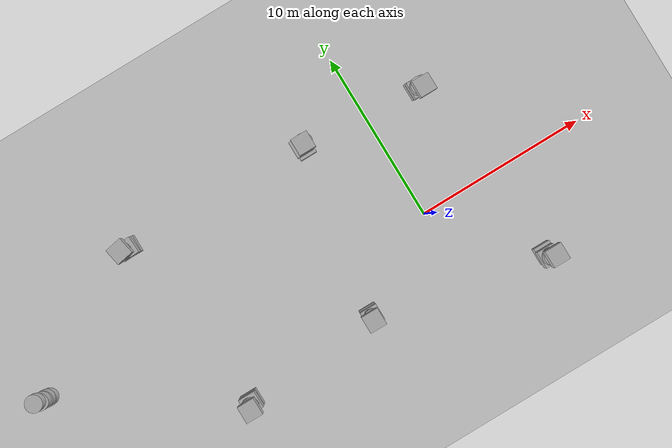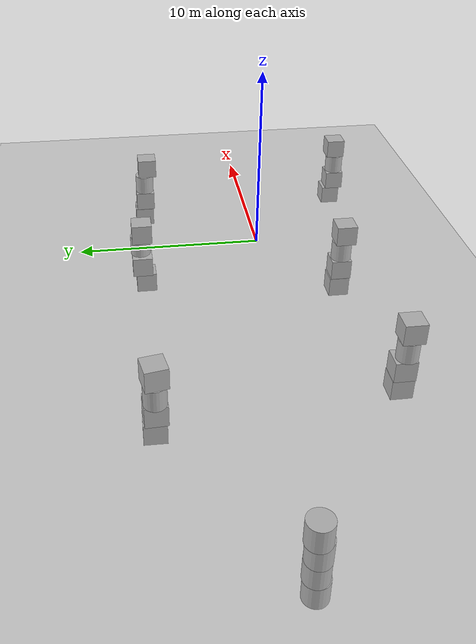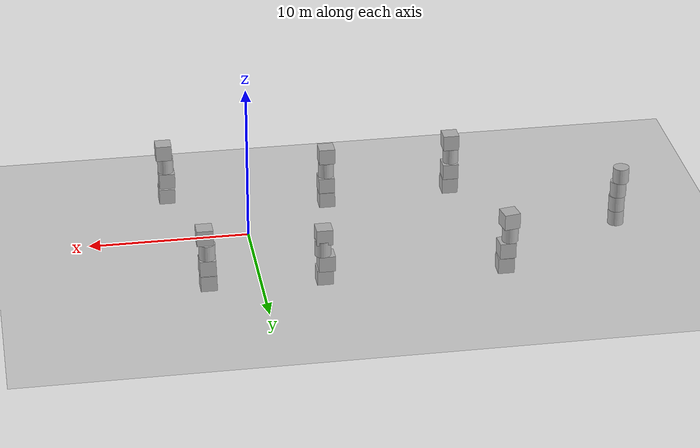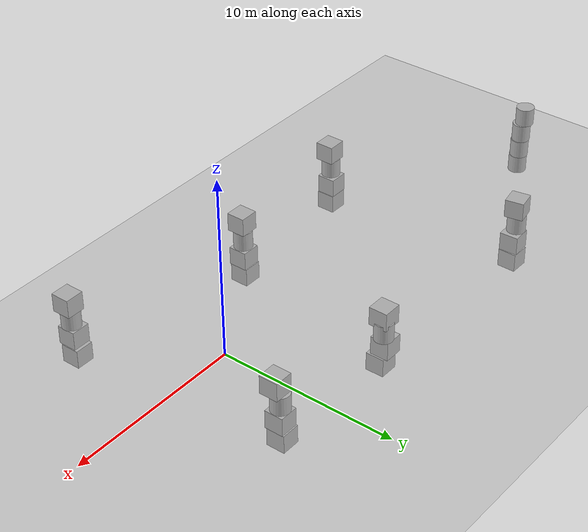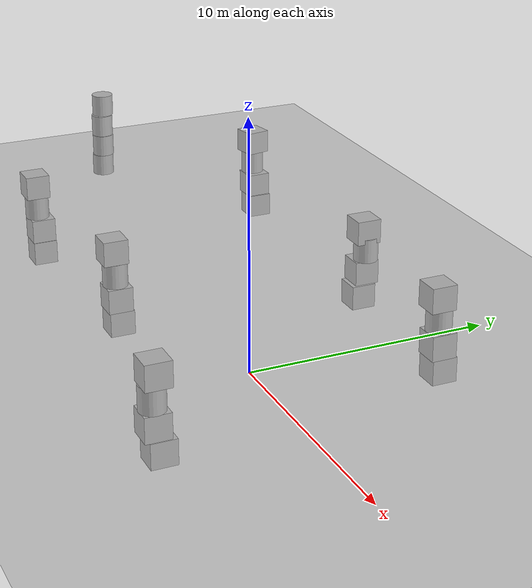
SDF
<sdf version='1.10'>
  <world name='empty'>
    <physics name='1ms' type='ode'>
      <max_step_size>0.001</max_step_size>
      <real_time_factor>1</real_time_factor>
      <real_time_update_rate>1000</real_time_update_rate>
    </physics>
    <plugin name='gz::sim::systems::Physics' filename='gz-sim-physics-system'/>
    <plugin name='gz::sim::systems::UserCommands' filename='gz-sim-user-commands-system'/>
    <plugin name='gz::sim::systems::SceneBroadcaster' filename='gz-sim-scene-broadcaster-system'/>
    <plugin name='gz::sim::systems::Contact' filename='gz-sim-contact-system'/>
    <gravity>0 0 -9.8000000000000007</gravity>
    <magnetic_field>5.5644999999999998e-06 2.2875799999999999e-05 -4.2388400000000002e-05</magnetic_field>
    <atmosphere type='adiabatic'/>
    <scene>
      <ambient>0.400000006 0.400000006 0.400000006 1</ambient>
      <background>0.699999988 0.699999988 0.699999988 1</background>
      <shadows>true</shadows>
    </scene>
    <model name='ground_plane'>
      <static>true</static>
      <link name='link'>
        <collision name='collision'>
          <geometry>
            <plane>
              <normal>0 0 1</normal>
              <size>100 100</size>
            </plane>
          </geometry>
          <surface>
            <friction>
              <ode/>
            </friction>
            <bounce/>
            <contact/>
          </surface>
        </collision>
        <visual name='visual'>
          <geometry>
            <plane>
              <normal>0 0 1</normal>
              <size>100 100</size>
            </plane>
          </geometry>
          <material>
            <ambient>0.800000012 0.800000012 0.800000012 1</ambient>
            <diffuse>0.800000012 0.800000012 0.800000012 1</diffuse>
            <specular>0.800000012 0.800000012 0.800000012 1</specular>
          </material>
        </visual>
        <pose>0 0 0 0 0 0</pose>
        <inertial>
          <pose>0 0 0 0 0 0</pose>
          <mass>1</mass>
          <inertia>
            <ixx>1</ixx>
            <ixy>0</ixy>
            <ixz>0</ixz>
            <iyy>1</iyy>
            <iyz>0</iyz>
            <izz>1</izz>
          </inertia>
        </inertial>
        <enable_wind>false</enable_wind>
      </link>
      <pose>0 0 0 0 0 0</pose>
      <self_collide>false</self_collide>
    </model>
    <model name='box'>
      <pose>3.2290199999999998 6.1986999999999997 0.5 6.2287699999999997e-22 9.3279700000000006e-22 -3.63155e-22</pose>
      <link name='box_link'>
        <inertial>
          <inertia>
            <ixx>0.16666</ixx>
            <ixy>0</ixy>
            <ixz>0</ixz>
            <iyy>0.16666</iyy>
            <iyz>0</iyz>
            <izz>0.16666</izz>
          </inertia>
          <mass>1</mass>
          <pose>0 0 0 0 0 0</pose>
        </inertial>
        <collision name='box_collision'>
          <geometry>
            <box>
              <size>1 1 1</size>
            </box>
          </geometry>
          <surface>
            <friction>
              <ode/>
            </friction>
            <bounce/>
            <contact/>
          </surface>
        </collision>
        <visual name='box_visual'>
          <geometry>
            <box>
              <size>1 1 1</size>
            </box>
          </geometry>
          <material>
            <ambient>0.300000012 0.300000012 0.300000012 1</ambient>
            <diffuse>0.699999988 0.699999988 0.699999988 1</diffuse>
            <specular>1 1 1 1</specular>
          </material>
        </visual>
        <pose>0 0 0 0 0 0</pose>
        <enable_wind>false</enable_wind>
      </link>
      <static>false</static>
      <self_collide>false</self_collide>
    </model>
    <model name='box_0'>
      <pose>-3.8219699999999999 6.5348899999999999 0.5 6.2287699999999997e-22 9.3279700000000006e-22 -3.63155e-22</pose>
      <link name='box_link'>
        <inertial>
          <inertia>
            <ixx>0.16666</ixx>
            <ixy>0</ixy>
            <ixz>0</ixz>
            <iyy>0.16666</iyy>
            <iyz>0</iyz>
            <izz>0.16666</izz>
          </inertia>
          <mass>1</mass>
          <pose>0 0 0 0 0 0</pose>
        </inertial>
        <collision name='box_collision'>
          <geometry>
            <box>
              <size>1 1 1</size>
            </box>
          </geometry>
          <surface>
            <friction>
              <ode/>
            </friction>
            <bounce/>
            <contact/>
          </surface>
        </collision>
        <visual name='box_visual'>
          <geometry>
            <box>
              <size>1 1 1</size>
            </box>
          </geometry>
          <material>
            <ambient>0.300000012 0.300000012 0.300000012 1</ambient>
            <diffuse>0.699999988 0.699999988 0.699999988 1</diffuse>
            <specular>1 1 1 1</specular>
          </material>
        </visual>
        <pose>0 0 0 0 0 0</pose>
        <enable_wind>false</enable_wind>
      </link>
      <static>false</static>
      <self_collide>false</self_collide>
    </model>
    <model name='cylinder'>
      <pose>3.24383 6.1315999999999997 2.4999600000000002 2.9919800000000008e-07 2.08551e-07 3.0839099999999998e-13</pose>
      <link name='cylinder_link'>
        <inertial>
          <inertia>
            <ixx>0.14580000000000001</ixx>
            <ixy>0</ixy>
            <ixz>0</ixz>
            <iyy>0.14580000000000001</iyy>
            <iyz>0</iyz>
            <izz>0.125</izz>
          </inertia>
          <mass>1</mass>
          <pose>0 0 0 0 0 0</pose>
        </inertial>
        <collision name='cylinder_collision'>
          <geometry>
            <cylinder>
              <radius>0.5</radius>
              <length>1</length>
            </cylinder>
          </geometry>
          <surface>
            <friction>
              <ode/>
            </friction>
            <bounce/>
            <contact/>
          </surface>
        </collision>
        <visual name='cylinder_visual'>
          <geometry>
            <cylinder>
              <radius>0.5</radius>
              <length>1</length>
            </cylinder>
          </geometry>
          <material>
            <ambient>0.300000012 0.300000012 0.300000012 1</ambient>
            <diffuse>0.699999988 0.699999988 0.699999988 1</diffuse>
            <specular>1 1 1 1</specular>
          </material>
        </visual>
        <pose>0 0 0 0 0 0</pose>
        <enable_wind>false</enable_wind>
      </link>
      <static>false</static>
      <self_collide>false</self_collide>
    </model>
    <model name='box_1'>
      <pose>3.2554599999999998 6.1295400000000004 1.5 3.5146799999999999e-08 4.0017200000000001e-09 3.2275099999999998e-13</pose>
      <link name='box_link'>
        <inertial>
          <inertia>
            <ixx>0.16666</ixx>
            <ixy>0</ixy>
            <ixz>0</ixz>
            <iyy>0.16666</iyy>
            <iyz>0</iyz>
            <izz>0.16666</izz>
          </inertia>
          <mass>1</mass>
          <pose>0 0 0 0 0 0</pose>
        </inertial>
        <collision name='box_collision'>
          <geometry>
            <box>
              <size>1 1 1</size>
            </box>
          </geometry>
          <surface>
            <friction>
              <ode/>
            </friction>
            <bounce/>
            <contact/>
          </surface>
        </collision>
        <visual name='box_visual'>
          <geometry>
            <box>
              <size>1 1 1</size>
            </box>
          </geometry>
          <material>
            <ambient>0.300000012 0.300000012 0.300000012 1</ambient>
            <diffuse>0.699999988 0.699999988 0.699999988 1</diffuse>
            <specular>1 1 1 1</specular>
          </material>
        </visual>
        <pose>0 0 0 0 0 0</pose>
        <enable_wind>false</enable_wind>
      </link>
      <static>false</static>
      <self_collide>false</self_collide>
    </model>
    <model name='box_2'>
      <pose>3.373173799090794 5.9645092034643934 3.4999998758204205 7.7313615140502642e-08 4.4144220521796931e-08 4.2821820258794955e-11</pose>
      <link name='box_link'>
        <inertial>
          <inertia>
            <ixx>0.16666</ixx>
            <ixy>0</ixy>
            <ixz>0</ixz>
            <iyy>0.16666</iyy>
            <iyz>0</iyz>
            <izz>0.16666</izz>
          </inertia>
          <mass>1</mass>
          <pose>0 0 0 0 0 0</pose>
        </inertial>
        <collision name='box_collision'>
          <geometry>
            <box>
              <size>1 1 1</size>
            </box>
          </geometry>
          <surface>
            <friction>
              <ode/>
            </friction>
            <bounce/>
            <contact/>
          </surface>
        </collision>
        <visual name='box_visual'>
          <geometry>
            <box>
              <size>1 1 1</size>
            </box>
          </geometry>
          <material>
            <ambient>0.300000012 0.300000012 0.300000012 1</ambient>
            <diffuse>0.699999988 0.699999988 0.699999988 1</diffuse>
            <specular>1 1 1 1</specular>
          </material>
        </visual>
        <pose>0 0 0 0 0 0</pose>
        <enable_wind>false</enable_wind>
      </link>
      <static>false</static>
      <self_collide>false</self_collide>
    </model>
    <model name='box_3'>
      <pose>-3.9138700000000002 6.7071399999999999 1.5 -2.2923699999999995e-07 2.8144699999999992e-08 1.4568000000000009e-13</pose>
      <link name='box_link'>
        <inertial>
          <inertia>
            <ixx>0.16666</ixx>
            <ixy>0</ixy>
            <ixz>0</ixz>
            <iyy>0.16666</iyy>
            <iyz>0</iyz>
            <izz>0.16666</izz>
          </inertia>
          <mass>1</mass>
          <pose>0 0 0 0 0 0</pose>
        </inertial>
        <collision name='box_collision'>
          <geometry>
            <box>
              <size>1 1 1</size>
            </box>
          </geometry>
          <surface>
            <friction>
              <ode/>
            </friction>
            <bounce/>
            <contact/>
          </surface>
        </collision>
        <visual name='box_visual'>
          <geometry>
            <box>
              <size>1 1 1</size>
            </box>
          </geometry>
          <material>
            <ambient>0.300000012 0.300000012 0.300000012 1</ambient>
            <diffuse>0.699999988 0.699999988 0.699999988 1</diffuse>
            <specular>1 1 1 1</specular>
          </material>
        </visual>
        <pose>0 0 0 0 0 0</pose>
        <enable_wind>false</enable_wind>
      </link>
      <static>false</static>
      <self_collide>false</self_collide>
    </model>
    <model name='box_4'>
      <pose>-3.7681131608721841 6.6866476125000105 3.3128317818594031 5.8973355975885864e-07 -5.797091750770158e-07 -1.9234866119155961e-07</pose>
      <link name='box_link'>
        <inertial>
          <inertia>
            <ixx>0.16666</ixx>
            <ixy>0</ixy>
            <ixz>0</ixz>
            <iyy>0.16666</iyy>
            <iyz>0</iyz>
            <izz>0.16666</izz>
          </inertia>
          <mass>1</mass>
          <pose>0 0 0 0 0 0</pose>
        </inertial>
        <collision name='box_collision'>
          <geometry>
            <box>
              <size>1 1 1</size>
            </box>
          </geometry>
          <surface>
            <friction>
              <ode/>
            </friction>
            <bounce/>
            <contact/>
          </surface>
        </collision>
        <visual name='box_visual'>
          <geometry>
            <box>
              <size>1 1 1</size>
            </box>
          </geometry>
          <material>
            <ambient>0.300000012 0.300000012 0.300000012 1</ambient>
            <diffuse>0.699999988 0.699999988 0.699999988 1</diffuse>
            <specular>1 1 1 1</specular>
          </material>
        </visual>
        <pose>0 0 0 0 0 0</pose>
        <enable_wind>false</enable_wind>
      </link>
      <static>false</static>
      <self_collide>false</self_collide>
    </model>
    <model name='cylinder_0'>
      <pose>-3.6952600000000002 6.7608600000000001 2.5 -2.8111200000000001e-07 1.7712099999999999e-07 -7.0194799999999997e-11</pose>
      <link name='cylinder_link'>
        <inertial>
          <inertia>
            <ixx>0.14580000000000001</ixx>
            <ixy>0</ixy>
            <ixz>0</ixz>
            <iyy>0.14580000000000001</iyy>
            <iyz>0</iyz>
            <izz>0.125</izz>
          </inertia>
          <mass>1</mass>
          <pose>0 0 0 0 0 0</pose>
        </inertial>
        <collision name='cylinder_collision'>
          <geometry>
            <cylinder>
              <radius>0.5</radius>
              <length>1</length>
            </cylinder>
          </geometry>
          <surface>
            <friction>
              <ode/>
            </friction>
            <bounce/>
            <contact/>
          </surface>
        </collision>
        <visual name='cylinder_visual'>
          <geometry>
            <cylinder>
              <radius>0.5</radius>
              <length>1</length>
            </cylinder>
          </geometry>
          <material>
            <ambient>0.300000012 0.300000012 0.300000012 1</ambient>
            <diffuse>0.699999988 0.699999988 0.699999988 1</diffuse>
            <specular>1 1 1 1</specular>
          </material>
        </visual>
        <pose>0 0 0 0 0 0</pose>
        <enable_wind>false</enable_wind>
      </link>
      <static>false</static>
      <self_collide>false</self_collide>
    </model>
    <model name='box_5'>
      <pose>4.6062399999999997 -5.3226800000000001 0.5 6.2287699999999997e-22 9.3279700000000006e-22 -3.63155e-22</pose>
      <link name='box_link'>
        <inertial>
          <inertia>
            <ixx>0.16666</ixx>
            <ixy>0</ixy>
            <ixz>0</ixz>
            <iyy>0.16666</iyy>
            <iyz>0</iyz>
            <izz>0.16666</izz>
          </inertia>
          <mass>1</mass>
          <pose>0 0 0 0 0 0</pose>
        </inertial>
        <collision name='box_collision'>
          <geometry>
            <box>
              <size>1 1 1</size>
            </box>
          </geometry>
          <surface>
            <friction>
              <ode/>
            </friction>
            <bounce/>
            <contact/>
          </surface>
        </collision>
        <visual name='box_visual'>
          <geometry>
            <box>
              <size>1 1 1</size>
            </box>
          </geometry>
          <material>
            <ambient>0.300000012 0.300000012 0.300000012 1</ambient>
            <diffuse>0.699999988 0.699999988 0.699999988 1</diffuse>
            <specular>1 1 1 1</specular>
          </material>
        </visual>
        <pose>0 0 0 0 0 0</pose>
        <enable_wind>false</enable_wind>
      </link>
      <static>false</static>
      <self_collide>false</self_collide>
    </model>
    <model name='box_6'>
      <pose>4.56257 -5.4897900000000002 1.4999899999999999 4.2028300000000014e-08 -1.74482e-09 -2.3176499999999998e-16</pose>
      <link name='box_link'>
        <inertial>
          <inertia>
            <ixx>0.16666</ixx>
            <ixy>0</ixy>
            <ixz>0</ixz>
            <iyy>0.16666</iyy>
            <iyz>0</iyz>
            <izz>0.16666</izz>
          </inertia>
          <mass>1</mass>
          <pose>0 0 0 0 0 0</pose>
        </inertial>
        <collision name='box_collision'>
          <geometry>
            <box>
              <size>1 1 1</size>
            </box>
          </geometry>
          <surface>
            <friction>
              <ode/>
            </friction>
            <bounce/>
            <contact/>
          </surface>
        </collision>
        <visual name='box_visual'>
          <geometry>
            <box>
              <size>1 1 1</size>
            </box>
          </geometry>
          <material>
            <ambient>0.300000012 0.300000012 0.300000012 1</ambient>
            <diffuse>0.699999988 0.699999988 0.699999988 1</diffuse>
            <specular>1 1 1 1</specular>
          </material>
        </visual>
        <pose>0 0 0 0 0 0</pose>
        <enable_wind>false</enable_wind>
      </link>
      <static>false</static>
      <self_collide>false</self_collide>
    </model>
    <model name='box_7'>
      <pose>4.7230499999999997 -5.4856800000000003 3.4999899999999999 -3.4174999999999989e-07 3.44648e-07 8.7020700000000004e-11</pose>
      <link name='box_link'>
        <inertial>
          <inertia>
            <ixx>0.16666</ixx>
            <ixy>0</ixy>
            <ixz>0</ixz>
            <iyy>0.16666</iyy>
            <iyz>0</iyz>
            <izz>0.16666</izz>
          </inertia>
          <mass>1</mass>
          <pose>0 0 0 0 0 0</pose>
        </inertial>
        <collision name='box_collision'>
          <geometry>
            <box>
              <size>1 1 1</size>
            </box>
          </geometry>
          <surface>
            <friction>
              <ode/>
            </friction>
            <bounce/>
            <contact/>
          </surface>
        </collision>
        <visual name='box_visual'>
          <geometry>
            <box>
              <size>1 1 1</size>
            </box>
          </geometry>
          <material>
            <ambient>0.300000012 0.300000012 0.300000012 1</ambient>
            <diffuse>0.699999988 0.699999988 0.699999988 1</diffuse>
            <specular>1 1 1 1</specular>
          </material>
        </visual>
        <pose>0 0 0 0 0 0</pose>
        <enable_wind>false</enable_wind>
      </link>
      <static>false</static>
      <self_collide>false</self_collide>
    </model>
    <model name='cylinder_1'>
      <pose>4.6059299999999999 -5.5312900000000003 2.4999899999999999 -2.2818900000000006e-07 6.1444799999999994e-08 -1.9463500000000001e-12</pose>
      <link name='cylinder_link'>
        <inertial>
          <inertia>
            <ixx>0.14580000000000001</ixx>
            <ixy>0</ixy>
            <ixz>0</ixz>
            <iyy>0.14580000000000001</iyy>
            <iyz>0</iyz>
            <izz>0.125</izz>
          </inertia>
          <mass>1</mass>
          <pose>0 0 0 0 0 0</pose>
        </inertial>
        <collision name='cylinder_collision'>
          <geometry>
            <cylinder>
              <radius>0.5</radius>
              <length>1</length>
            </cylinder>
          </geometry>
          <surface>
            <friction>
              <ode/>
            </friction>
            <bounce/>
            <contact/>
          </surface>
        </collision>
        <visual name='cylinder_visual'>
          <geometry>
            <cylinder>
              <radius>0.5</radius>
              <length>1</length>
            </cylinder>
          </geometry>
          <material>
            <ambient>0.300000012 0.300000012 0.300000012 1</ambient>
            <diffuse>0.699999988 0.699999988 0.699999988 1</diffuse>
            <specular>1 1 1 1</specular>
          </material>
        </visual>
        <pose>0 0 0 0 0 0</pose>
        <enable_wind>false</enable_wind>
      </link>
      <static>false</static>
      <self_collide>false</self_collide>
    </model>
    <model name='box_8'>
      <pose>-5.4304600000000001 -3.2358099999999999 0.5 6.2287699999999997e-22 9.3279700000000006e-22 -3.63155e-22</pose>
      <link name='box_link'>
        <inertial>
          <inertia>
            <ixx>0.16666</ixx>
            <ixy>0</ixy>
            <ixz>0</ixz>
            <iyy>0.16666</iyy>
            <iyz>0</iyz>
            <izz>0.16666</izz>
          </inertia>
          <mass>1</mass>
          <pose>0 0 0 0 0 0</pose>
        </inertial>
        <collision name='box_collision'>
          <geometry>
            <box>
              <size>1 1 1</size>
            </box>
          </geometry>
          <surface>
            <friction>
              <ode/>
            </friction>
            <bounce/>
            <contact/>
          </surface>
        </collision>
        <visual name='box_visual'>
          <geometry>
            <box>
              <size>1 1 1</size>
            </box>
          </geometry>
          <material>
            <ambient>0.300000012 0.300000012 0.300000012 1</ambient>
            <diffuse>0.699999988 0.699999988 0.699999988 1</diffuse>
            <specular>1 1 1 1</specular>
          </material>
        </visual>
        <pose>0 0 0 0 0 0</pose>
        <enable_wind>false</enable_wind>
      </link>
      <static>false</static>
      <self_collide>false</self_collide>
    </model>
    <model name='box_9'>
      <pose>-5.4638600000000004 -3.39079 3.5 6.4027999999999996e-08 -1.5895699999999993e-08 -3.50446e-14</pose>
      <link name='box_link'>
        <inertial>
          <inertia>
            <ixx>0.16666</ixx>
            <ixy>0</ixy>
            <ixz>0</ixz>
            <iyy>0.16666</iyy>
            <iyz>0</iyz>
            <izz>0.16666</izz>
          </inertia>
          <mass>1</mass>
          <pose>0 0 0 0 0 0</pose>
        </inertial>
        <collision name='box_collision'>
          <geometry>
            <box>
              <size>1 1 1</size>
            </box>
          </geometry>
          <surface>
            <friction>
              <ode/>
            </friction>
            <bounce/>
            <contact/>
          </surface>
        </collision>
        <visual name='box_visual'>
          <geometry>
            <box>
              <size>1 1 1</size>
            </box>
          </geometry>
          <material>
            <ambient>0.300000012 0.300000012 0.300000012 1</ambient>
            <diffuse>0.699999988 0.699999988 0.699999988 1</diffuse>
            <specular>1 1 1 1</specular>
          </material>
        </visual>
        <pose>0 0 0 0 0 0</pose>
        <enable_wind>false</enable_wind>
      </link>
      <static>false</static>
      <self_collide>false</self_collide>
    </model>
    <model name='cylinder_2'>
      <pose>-5.4359599999999997 -3.32159 2.5 5.1266600000000003e-08 -1.5479999999999994e-08 1.1043300000000003e-14</pose>
      <link name='cylinder_link'>
        <inertial>
          <inertia>
            <ixx>0.14580000000000001</ixx>
            <ixy>0</ixy>
            <ixz>0</ixz>
            <iyy>0.14580000000000001</iyy>
            <iyz>0</iyz>
            <izz>0.125</izz>
          </inertia>
          <mass>1</mass>
          <pose>0 0 0 0 0 0</pose>
        </inertial>
        <collision name='cylinder_collision'>
          <geometry>
            <cylinder>
              <radius>0.5</radius>
              <length>1</length>
            </cylinder>
          </geometry>
          <surface>
            <friction>
              <ode/>
            </friction>
            <bounce/>
            <contact/>
          </surface>
        </collision>
        <visual name='cylinder_visual'>
          <geometry>
            <cylinder>
              <radius>0.5</radius>
              <length>1</length>
            </cylinder>
          </geometry>
          <material>
            <ambient>0.300000012 0.300000012 0.300000012 1</ambient>
            <diffuse>0.699999988 0.699999988 0.699999988 1</diffuse>
            <specular>1 1 1 1</specular>
          </material>
        </visual>
        <pose>0 0 0 0 0 0</pose>
        <enable_wind>false</enable_wind>
      </link>
      <static>false</static>
      <self_collide>false</self_collide>
    </model>
    <model name='box_10'>
      <pose>-5.4096399999999996 -3.2857699999999999 1.5 4.7371500000000002e-08 -8.4466200000000041e-09 1.4555799999999997e-15</pose>
      <link name='box_link'>
        <inertial>
          <inertia>
            <ixx>0.16666</ixx>
            <ixy>0</ixy>
            <ixz>0</ixz>
            <iyy>0.16666</iyy>
            <iyz>0</iyz>
            <izz>0.16666</izz>
          </inertia>
          <mass>1</mass>
          <pose>0 0 0 0 0 0</pose>
        </inertial>
        <collision name='box_collision'>
          <geometry>
            <box>
              <size>1 1 1</size>
            </box>
          </geometry>
          <surface>
            <friction>
              <ode/>
            </friction>
            <bounce/>
            <contact/>
          </surface>
        </collision>
        <visual name='box_visual'>
          <geometry>
            <box>
              <size>1 1 1</size>
            </box>
          </geometry>
          <material>
            <ambient>0.300000012 0.300000012 0.300000012 1</ambient>
            <diffuse>0.699999988 0.699999988 0.699999988 1</diffuse>
            <specular>1 1 1 1</specular>
          </material>
        </visual>
        <pose>0 0 0 0 0 0</pose>
        <enable_wind>false</enable_wind>
      </link>
      <static>false</static>
      <self_collide>false</self_collide>
    </model>
    <model name='box_11'>
      <pose>-14.9443 6.8836399999999998 0.50003799999999998 -7.5627699999999994e-05 -1.1567400000000001e-06 -0.012460100000000003</pose>
      <link name='box_link'>
        <inertial>
          <inertia>
            <ixx>0.16666</ixx>
            <ixy>0</ixy>
            <ixz>0</ixz>
            <iyy>0.16666</iyy>
            <iyz>0</iyz>
            <izz>0.16666</izz>
          </inertia>
          <mass>1</mass>
          <pose>0 0 0 0 0 0</pose>
        </inertial>
        <collision name='box_collision'>
          <geometry>
            <box>
              <size>1 1 1</size>
            </box>
          </geometry>
          <surface>
            <friction>
              <ode/>
            </friction>
            <bounce/>
            <contact/>
          </surface>
        </collision>
        <visual name='box_visual'>
          <geometry>
            <box>
              <size>1 1 1</size>
            </box>
          </geometry>
          <material>
            <ambient>0.300000012 0.300000012 0.300000012 1</ambient>
            <diffuse>0.699999988 0.699999988 0.699999988 1</diffuse>
            <specular>1 1 1 1</specular>
          </material>
        </visual>
        <pose>0 0 0 0 0 0</pose>
        <enable_wind>false</enable_wind>
      </link>
      <static>false</static>
      <self_collide>false</self_collide>
    </model>
    <model name='cylinder_3'>
      <pose>-15.226935616183704 6.841234661736955 2.4999996090824412 -7.7302259696772161e-08 1.1984264698216158e-07 -3.0659799992145125</pose>
      <link name='cylinder_link'>
        <inertial>
          <inertia>
            <ixx>0.14580000000000001</ixx>
            <ixy>0</ixy>
            <ixz>0</ixz>
            <iyy>0.14580000000000001</iyy>
            <iyz>0</iyz>
            <izz>0.125</izz>
          </inertia>
          <mass>1</mass>
          <pose>0 0 0 0 0 0</pose>
        </inertial>
        <collision name='cylinder_collision'>
          <geometry>
            <cylinder>
              <radius>0.5</radius>
              <length>1</length>
            </cylinder>
          </geometry>
          <surface>
            <friction>
              <ode/>
            </friction>
            <bounce/>
            <contact/>
          </surface>
        </collision>
        <visual name='cylinder_visual'>
          <geometry>
            <cylinder>
              <radius>0.5</radius>
              <length>1</length>
            </cylinder>
          </geometry>
          <material>
            <ambient>0.300000012 0.300000012 0.300000012 1</ambient>
            <diffuse>0.699999988 0.699999988 0.699999988 1</diffuse>
            <specular>1 1 1 1</specular>
          </material>
        </visual>
        <pose>0 0 0 0 0 0</pose>
        <enable_wind>false</enable_wind>
      </link>
      <static>false</static>
      <self_collide>false</self_collide>
    </model>
    <model name='box_12'>
      <pose>-15.16352906935083 6.8440061956859033 3.4999996130599356 -3.1415925820064685 -1.1822517673481456e-07 0.18322999793208453</pose>
      <link name='box_link'>
        <inertial>
          <inertia>
            <ixx>0.16666</ixx>
            <ixy>0</ixy>
            <ixz>0</ixz>
            <iyy>0.16666</iyy>
            <iyz>0</iyz>
            <izz>0.16666</izz>
          </inertia>
          <mass>1</mass>
          <pose>0 0 0 0 0 0</pose>
        </inertial>
        <collision name='box_collision'>
          <geometry>
            <box>
              <size>1 1 1</size>
            </box>
          </geometry>
          <surface>
            <friction>
              <ode/>
            </friction>
            <bounce/>
            <contact/>
          </surface>
        </collision>
        <visual name='box_visual'>
          <geometry>
            <box>
              <size>1 1 1</size>
            </box>
          </geometry>
          <material>
            <ambient>0.300000012 0.300000012 0.300000012 1</ambient>
            <diffuse>0.699999988 0.699999988 0.699999988 1</diffuse>
            <specular>1 1 1 1</specular>
          </material>
        </visual>
        <pose>0 0 0 0 0 0</pose>
        <enable_wind>false</enable_wind>
      </link>
      <static>false</static>
      <self_collide>false</self_collide>
    </model>
    <model name='box_13'>
      <pose>-15.0063 6.8455599999999999 1.5 1.5708 4.3337099999877709e-06 0.046061500000000005</pose>
      <link name='box_link'>
        <inertial>
          <inertia>
            <ixx>0.16666</ixx>
            <ixy>0</ixy>
            <ixz>0</ixz>
            <iyy>0.16666</iyy>
            <iyz>0</iyz>
            <izz>0.16666</izz>
          </inertia>
          <mass>1</mass>
          <pose>0 0 0 0 0 0</pose>
        </inertial>
        <collision name='box_collision'>
          <geometry>
            <box>
              <size>1 1 1</size>
            </box>
          </geometry>
          <surface>
            <friction>
              <ode/>
            </friction>
            <bounce/>
            <contact/>
          </surface>
        </collision>
        <visual name='box_visual'>
          <geometry>
            <box>
              <size>1 1 1</size>
            </box>
          </geometry>
          <material>
            <ambient>0.300000012 0.300000012 0.300000012 1</ambient>
            <diffuse>0.699999988 0.699999988 0.699999988 1</diffuse>
            <specular>1 1 1 1</specular>
          </material>
        </visual>
        <pose>0 0 0 0 0 0</pose>
        <enable_wind>false</enable_wind>
      </link>
      <static>false</static>
      <self_collide>false</self_collide>
    </model>
    <model name='box_14'>
      <pose>-13.580651305724267 -3.9132900539836752 1.4999959541133594 3.8336067551572355e-08 -2.7383214202718377e-08 -2.3316874840748917e-15</pose>
      <link name='box_link'>
        <inertial>
          <inertia>
            <ixx>0.16666</ixx>
            <ixy>0</ixy>
            <ixz>0</ixz>
            <iyy>0.16666</iyy>
            <iyz>0</iyz>
            <izz>0.16666</izz>
          </inertia>
          <mass>1</mass>
          <pose>0 0 0 0 0 0</pose>
        </inertial>
        <collision name='box_collision'>
          <geometry>
            <box>
              <size>1 1 1</size>
            </box>
          </geometry>
          <surface>
            <friction>
              <ode/>
            </friction>
            <bounce/>
            <contact/>
          </surface>
        </collision>
        <visual name='box_visual'>
          <geometry>
            <box>
              <size>1 1 1</size>
            </box>
          </geometry>
          <material>
            <ambient>0.300000012 0.300000012 0.300000012 1</ambient>
            <diffuse>0.699999988 0.699999988 0.699999988 1</diffuse>
            <specular>1 1 1 1</specular>
          </material>
        </visual>
        <pose>0 0 0 0 0 0</pose>
        <enable_wind>false</enable_wind>
      </link>
      <static>false</static>
      <self_collide>false</self_collide>
    </model>
    <model name='box_15'>
      <pose>-13.5463 -3.90035 0.5 0 0 0</pose>
      <link name='box_link'>
        <inertial>
          <inertia>
            <ixx>0.16666</ixx>
            <ixy>0</ixy>
            <ixz>0</ixz>
            <iyy>0.16666</iyy>
            <iyz>0</iyz>
            <izz>0.16666</izz>
          </inertia>
          <mass>1</mass>
          <pose>0 0 0 0 0 0</pose>
        </inertial>
        <collision name='box_collision'>
          <geometry>
            <box>
              <size>1 1 1</size>
            </box>
          </geometry>
          <surface>
            <friction>
              <ode/>
            </friction>
            <bounce/>
            <contact/>
          </surface>
        </collision>
        <visual name='box_visual'>
          <geometry>
            <box>
              <size>1 1 1</size>
            </box>
          </geometry>
          <material>
            <ambient>0.300000012 0.300000012 0.300000012 1</ambient>
            <diffuse>0.699999988 0.699999988 0.699999988 1</diffuse>
            <specular>1 1 1 1</specular>
          </material>
        </visual>
        <pose>0 0 0 0 0 0</pose>
        <enable_wind>false</enable_wind>
      </link>
      <static>false</static>
      <self_collide>false</self_collide>
    </model>
    <model name='cylinder_4'>
      <pose>-13.664006970555157 -4.0125329456641046 2.4999921873561148 1.6340597584301308e-07 1.0198000642088838e-07 4.7554560112331491e-11</pose>
      <link name='cylinder_link'>
        <inertial>
          <inertia>
            <ixx>0.14580000000000001</ixx>
            <ixy>0</ixy>
            <ixz>0</ixz>
            <iyy>0.14580000000000001</iyy>
            <iyz>0</iyz>
            <izz>0.125</izz>
          </inertia>
          <mass>1</mass>
          <pose>0 0 0 0 0 0</pose>
        </inertial>
        <collision name='cylinder_collision'>
          <geometry>
            <cylinder>
              <radius>0.5</radius>
              <length>1</length>
            </cylinder>
          </geometry>
          <surface>
            <friction>
              <ode/>
            </friction>
            <bounce/>
            <contact/>
          </surface>
        </collision>
        <visual name='cylinder_visual'>
          <geometry>
            <cylinder>
              <radius>0.5</radius>
              <length>1</length>
            </cylinder>
          </geometry>
          <material>
            <ambient>0.300000012 0.300000012 0.300000012 1</ambient>
            <diffuse>0.699999988 0.699999988 0.699999988 1</diffuse>
            <specular>1 1 1 1</specular>
          </material>
        </visual>
        <pose>0 0 0 0 0 0</pose>
        <enable_wind>false</enable_wind>
      </link>
      <static>false</static>
      <self_collide>false</self_collide>
    </model>
    <model name='box_16'>
      <pose>-13.616306922798222 -4.0577434871160802 3.4907128778212293 2.0304620063710995e-07 1.4251992264547869e-07 4.7338621398711957e-11</pose>
      <link name='box_link'>
        <inertial>
          <inertia>
            <ixx>0.16666</ixx>
            <ixy>0</ixy>
            <ixz>0</ixz>
            <iyy>0.16666</iyy>
            <iyz>0</iyz>
            <izz>0.16666</izz>
          </inertia>
          <mass>1</mass>
          <pose>0 0 0 0 0 0</pose>
        </inertial>
        <collision name='box_collision'>
          <geometry>
            <box>
              <size>1 1 1</size>
            </box>
          </geometry>
          <surface>
            <friction>
              <ode/>
            </friction>
            <bounce/>
            <contact/>
          </surface>
        </collision>
        <visual name='box_visual'>
          <geometry>
            <box>
              <size>1 1 1</size>
            </box>
          </geometry>
          <material>
            <ambient>0.300000012 0.300000012 0.300000012 1</ambient>
            <diffuse>0.699999988 0.699999988 0.699999988 1</diffuse>
            <specular>1 1 1 1</specular>
          </material>
        </visual>
        <pose>0 0 0 0 0 0</pose>
        <enable_wind>false</enable_wind>
      </link>
      <static>false</static>
      <self_collide>false</self_collide>
    </model>
    <model name='cylinder_5'>
      <pose>-23.122927236325033 2.1248127930979459 0.49999942638036005 2.1894202340437909e-19 2.6128238882446591e-20 2.2057203831506121e-20</pose>
      <link name='cylinder_link'>
        <inertial>
          <inertia>
            <ixx>0.14580000000000001</ixx>
            <ixy>0</ixy>
            <ixz>0</ixz>
            <iyy>0.14580000000000001</iyy>
            <iyz>0</iyz>
            <izz>0.125</izz>
          </inertia>
          <mass>1</mass>
          <pose>0 0 0 0 0 0</pose>
        </inertial>
        <collision name='cylinder_collision'>
          <geometry>
            <cylinder>
              <radius>0.5</radius>
              <length>1</length>
            </cylinder>
          </geometry>
          <surface>
            <friction>
              <ode/>
            </friction>
            <bounce/>
            <contact/>
          </surface>
        </collision>
        <visual name='cylinder_visual'>
          <geometry>
            <cylinder>
              <radius>0.5</radius>
              <length>1</length>
            </cylinder>
          </geometry>
          <material>
            <ambient>0.300000012 0.300000012 0.300000012 1</ambient>
            <diffuse>0.699999988 0.699999988 0.699999988 1</diffuse>
            <specular>1 1 1 1</specular>
          </material>
        </visual>
        <pose>0 0 0 0 0 0</pose>
        <enable_wind>false</enable_wind>
      </link>
      <static>false</static>
      <self_collide>false</self_collide>
    </model>
    <model name='cylinder_6'>
      <pose>-23.119516448038389 2.1647101190045479 1.4999319651675318 -7.6805053279828689e-08 -8.4595386800511974e-08 -1.0303601875086339e-11</pose>
      <link name='cylinder_link'>
        <inertial>
          <inertia>
            <ixx>0.14580000000000001</ixx>
            <ixy>0</ixy>
            <ixz>0</ixz>
            <iyy>0.14580000000000001</iyy>
            <iyz>0</iyz>
            <izz>0.125</izz>
          </inertia>
          <mass>1</mass>
          <pose>0 0 0 0 0 0</pose>
        </inertial>
        <collision name='cylinder_collision'>
          <geometry>
            <cylinder>
              <radius>0.5</radius>
              <length>1</length>
            </cylinder>
          </geometry>
          <surface>
            <friction>
              <ode/>
            </friction>
            <bounce/>
            <contact/>
          </surface>
        </collision>
        <visual name='cylinder_visual'>
          <geometry>
            <cylinder>
              <radius>0.5</radius>
              <length>1</length>
            </cylinder>
          </geometry>
          <material>
            <ambient>0.300000012 0.300000012 0.300000012 1</ambient>
            <diffuse>0.699999988 0.699999988 0.699999988 1</diffuse>
            <specular>1 1 1 1</specular>
          </material>
        </visual>
        <pose>0 0 0 0 0 0</pose>
        <enable_wind>false</enable_wind>
      </link>
      <static>false</static>
      <self_collide>false</self_collide>
    </model>
    <model name='cylinder_7'>
      <pose>-23.176000786237491 2.172314317471534 2.4986115595743255 -1.0237222474066124e-07 -1.4500207031494742e-07 1.5042447231284544e-11</pose>
      <link name='cylinder_link'>
        <inertial>
          <inertia>
            <ixx>0.14580000000000001</ixx>
            <ixy>0</ixy>
            <ixz>0</ixz>
            <iyy>0.14580000000000001</iyy>
            <iyz>0</iyz>
            <izz>0.125</izz>
          </inertia>
          <mass>1</mass>
          <pose>0 0 0 0 0 0</pose>
        </inertial>
        <collision name='cylinder_collision'>
          <geometry>
            <cylinder>
              <radius>0.5</radius>
              <length>1</length>
            </cylinder>
          </geometry>
          <surface>
            <friction>
              <ode/>
            </friction>
            <bounce/>
            <contact/>
          </surface>
        </collision>
        <visual name='cylinder_visual'>
          <geometry>
            <cylinder>
              <radius>0.5</radius>
              <length>1</length>
            </cylinder>
          </geometry>
          <material>
            <ambient>0.300000012 0.300000012 0.300000012 1</ambient>
            <diffuse>0.699999988 0.699999988 0.699999988 1</diffuse>
            <specular>1 1 1 1</specular>
          </material>
        </visual>
        <pose>0 0 0 0 0 0</pose>
        <enable_wind>false</enable_wind>
      </link>
      <static>false</static>
      <self_collide>false</self_collide>
    </model>
    <model name='cylinder_8'>
      <pose>-23.280613225633925 2.2614803137146171 3.4963915734379012 -1.0606092918727367e-07 -1.391737446468176e-07 1.799411788674601e-11</pose>
      <link name='cylinder_link'>
        <inertial>
          <inertia>
            <ixx>0.14580000000000001</ixx>
            <ixy>0</ixy>
            <ixz>0</ixz>
            <iyy>0.14580000000000001</iyy>
            <iyz>0</iyz>
            <izz>0.125</izz>
          </inertia>
          <mass>1</mass>
          <pose>0 0 0 0 0 0</pose>
        </inertial>
        <collision name='cylinder_collision'>
          <geometry>
            <cylinder>
              <radius>0.5</radius>
              <length>1</length>
            </cylinder>
          </geometry>
          <surface>
            <friction>
              <ode/>
            </friction>
            <bounce/>
            <contact/>
          </surface>
        </collision>
        <visual name='cylinder_visual'>
          <geometry>
            <cylinder>
              <radius>0.5</radius>
              <length>1</length>
            </cylinder>
          </geometry>
          <material>
            <ambient>0.300000012 0.300000012 0.300000012 1</ambient>
            <diffuse>0.699999988 0.699999988 0.699999988 1</diffuse>
            <specular>1 1 1 1</specular>
          </material>
        </visual>
        <pose>0 0 0 0 0 0</pose>
        <enable_wind>false</enable_wind>
      </link>
      <static>false</static>
      <self_collide>false</self_collide>
    </model>
    <light name='sun' type='directional'>
      <pose>0 0 10 0 0 0</pose>
      <cast_shadows>true</cast_shadows>
      <intensity>1</intensity>
      <direction>-0.5 0.10000000000000001 -0.90000000000000002</direction>
      <diffuse>0.800000012 0.800000012 0.800000012 1</diffuse>
      <specular>0.200000003 0.200000003 0.200000003 1</specular>
      <attenuation>
        <range>1000</range>
        <linear>0.0099999997764825821</linear>
        <constant>0.89999997615814209</constant>
        <quadratic>0.0010000000474974513</quadratic>
      </attenuation>
      <spot>
        <inner_angle>0</inner_angle>
        <outer_angle>0</outer_angle>
        <falloff>0</falloff>
      </spot>
    </light>
  </world>
</sdf>
